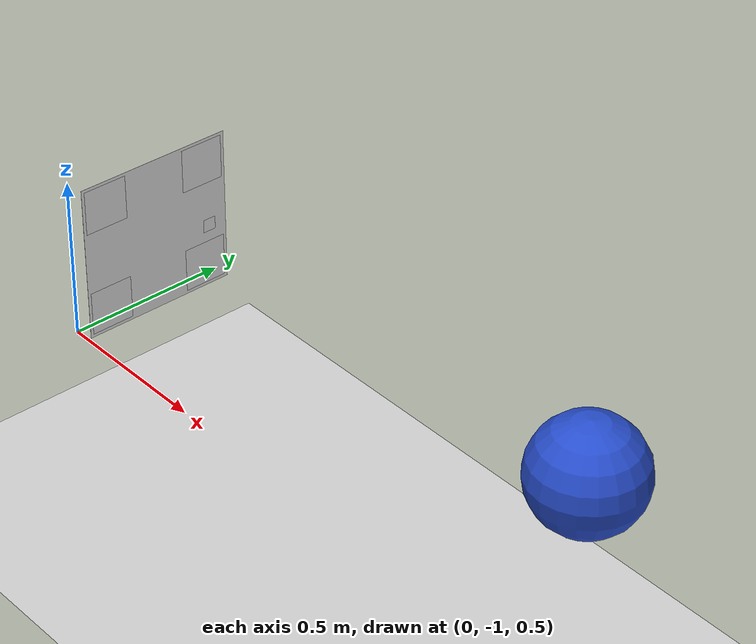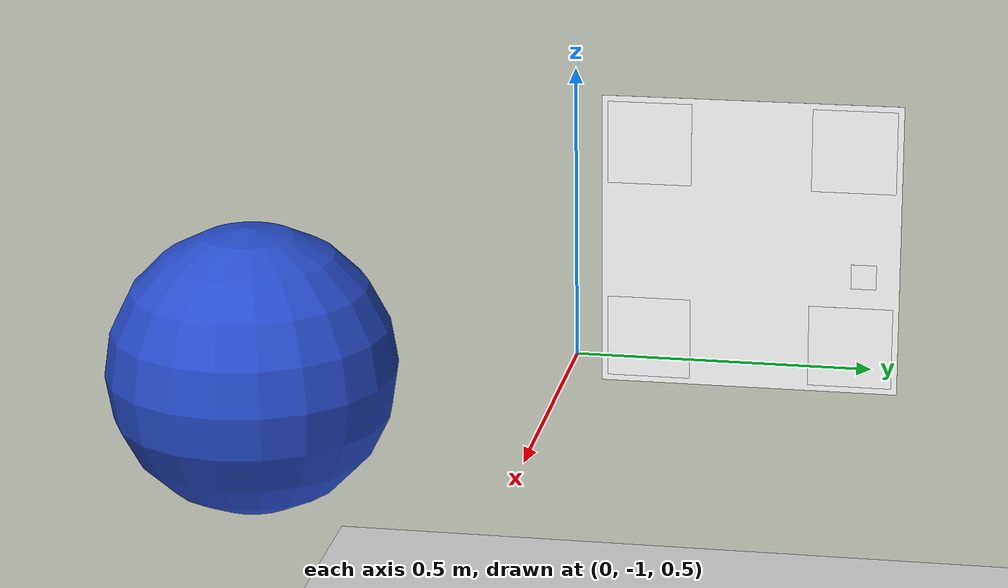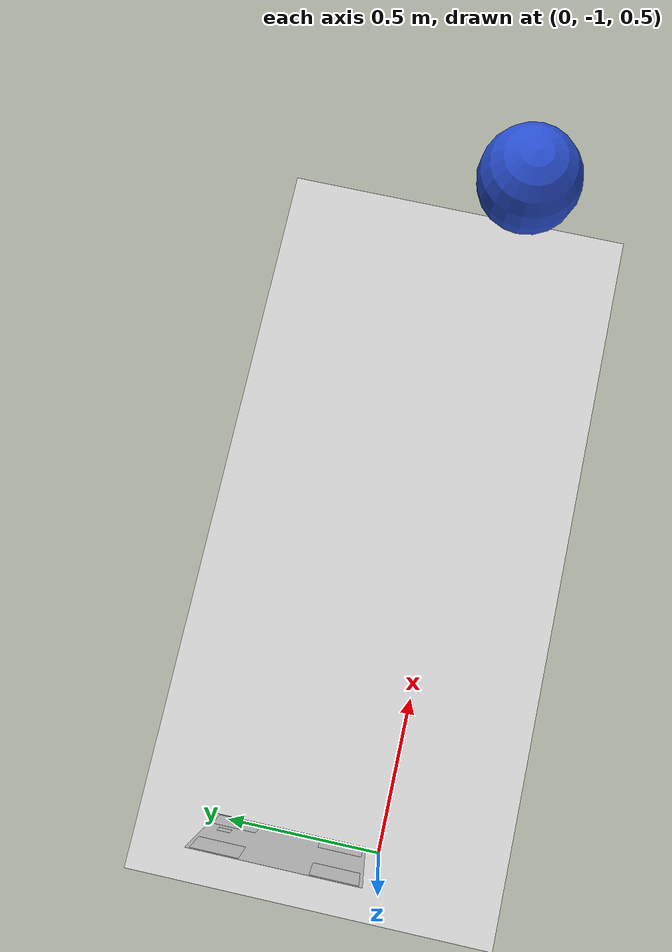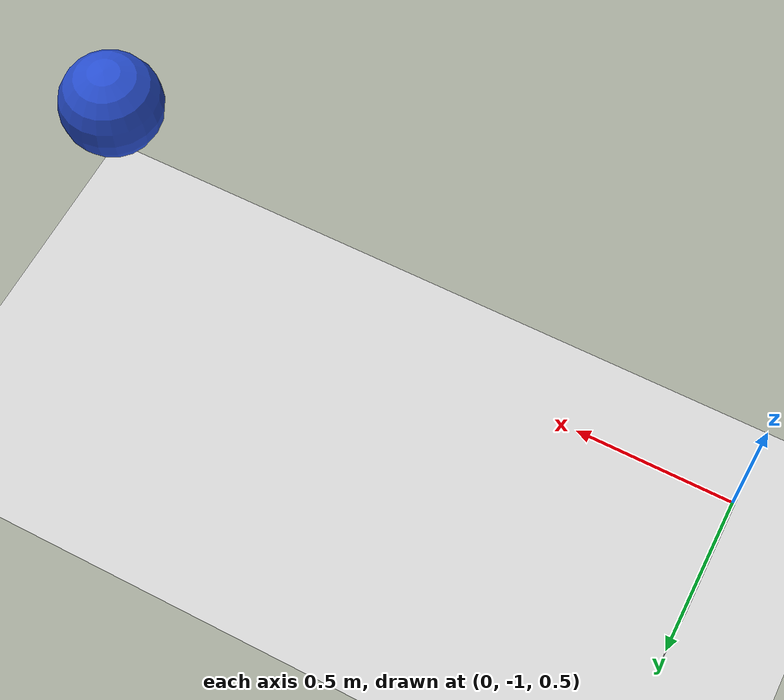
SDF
<?xml version="1.0" ?>
<sdf version="1.4">
  <!-- We use a custom world for the rrbot so that the camera angle is launched correctly -->

  <world name="default">
    <!-- Included light -->
    <include>
      <uri>https://fuel.gazebosim.org/1.0/OpenRobotics/models/Sun</uri>
    </include>

    <!-- Included model -->
    <include>
      <uri>https://fuel.gazebosim.org/1.0/OpenRobotics/models/Ground Plane</uri>
    </include>

    <include>
      <uri>
        model://arucotag
      </uri>
      <name>arucotag</name>
      <pose>0 -0.707 0.707 0 1.57 0</pose>
    </include>

    <include>
      <uri>
        model://spherical_object
      </uri>
      <name>spherical_object</name>
      <pose>1 -0.5 0.6 0 0 0</pose>
    </include>

    <gravity>0 0 0</gravity>

    <!-- Focus camera on tall pendulum -->
    <gui fullscreen='0'>
      <camera name='user_camera'>
        <pose>4.927360 -4.376610 3.740080 0.000000 0.275643 2.356190</pose>
        <view_controller>orbit</view_controller>
      </camera>
    </gui>

    <!-- World control -->

  </world>
</sdf>

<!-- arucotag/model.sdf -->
<sdf version='1.9'>
  <model name='arucotag'>
    <static>true</static>
    <pose>0 0 0.001 0 0 0</pose>
    <link name='base'>
      <visual name='background_visual'>
        <geometry>
          <plane>
            <normal>0 0 1</normal>
            <size>0.5 0.5</size>
          </plane>
        </geometry>
        <material>
          <diffuse>1 1 1 1</diffuse>
          <specular>0.2 0.2 0.2 1</specular>
        </material>
      </visual>
      <visual name='tag_0_visual'>
        <pose>0.17 0.17 0.0002 0 0 0</pose>
        <geometry>
          <plane>
            <normal>0 0 1</normal>
            <size>0.14 0.14</size>
          </plane>
        </geometry>
        <material>
          <diffuse>1 1 1 1</diffuse>
          <specular>0.4 0.4 0.4 1</specular>
          <pbr>
            <metal>
              <albedo_map>model://arucotag/aruco_0.png</albedo_map>
            </metal>
          </pbr>
        </material>
      </visual>
      <visual name='tag_1_visual'>
        <pose>-0.17 0.17 0.0002 0 0 0</pose>
        <geometry>
          <plane>
            <normal>0 0 1</normal>
            <size>0.14 0.14</size>
          </plane>
        </geometry>
        <material>
          <diffuse>1 1 1 1</diffuse>
          <specular>0.4 0.4 0.4 1</specular>
          <pbr>
            <metal>
              <albedo_map>model://arucotag/aruco_1.png</albedo_map>
            </metal>
          </pbr>
        </material>
      </visual>
      <visual name='tag_2_visual'>
        <pose>-0.17 -0.17 0.0002 0 0 0</pose>
        <geometry>
          <plane>
            <normal>0 0 1</normal>
            <size>0.14 0.14</size>
          </plane>
        </geometry>
        <material>
          <diffuse>1 1 1 1</diffuse>
          <specular>0.4 0.4 0.4 1</specular>
          <pbr>
            <metal>
              <albedo_map>model://arucotag/aruco_2.png</albedo_map>
            </metal>
          </pbr>
        </material>
      </visual>
      <visual name='tag_3_visual'>
        <pose>0.17 -0.17 0.0002 0 0 0</pose>
        <geometry>
          <plane>
            <normal>0 0 1</normal>
            <size>0.14 0.14</size>
          </plane>
        </geometry>
        <material>
          <diffuse>1 1 1 1</diffuse>
          <specular>0.4 0.4 0.4 1</specular>
          <pbr>
            <metal>
              <albedo_map>model://arucotag/aruco_3.png</albedo_map>
            </metal>
          </pbr>
        </material>
      </visual>
      <visual name='tag_4_visual'>
        <pose>0.0 0.11 0.0002 0 0 0</pose>
        <geometry>
          <plane>
            <normal>0 0 1</normal>
            <size>0.07 0.07</size>
          </plane>
        </geometry>
        <material>
          <diffuse>1 1 1 1</diffuse>
          <specular>0.4 0.4 0.4 1</specular>
          <pbr>
            <metal>
              <albedo_map>model://arucotag/aruco_4.png</albedo_map>
            </metal>
          </pbr>
        </material>
      </visual>
      <visual name='tag_5_visual'>
        <pose>-0.11 0.0 0.0002 0 0 0</pose>
        <geometry>
          <plane>
            <normal>0 0 1</normal>
            <size>0.07 0.07</size>
          </plane>
        </geometry>
        <material>
          <diffuse>1 1 1 1</diffuse>
          <specular>0.4 0.4 0.4 1</specular>
          <pbr>
            <metal>
              <albedo_map>model://arucotag/aruco_5.png</albedo_map>
            </metal>
          </pbr>
        </material>
      </visual>
      <visual name='tag_6_visual'>
        <pose>0.0 -0.11 0.0002 0 0 0</pose>
        <geometry>
          <plane>
            <normal>0 0 1</normal>
            <size>0.07 0.07</size>
          </plane>
        </geometry>
        <material>
          <diffuse>1 1 1 1</diffuse>
          <specular>0.4 0.4 0.4 1</specular>
          <pbr>
            <metal>
              <albedo_map>model://arucotag/aruco_6.png</albedo_map>
            </metal>
          </pbr>
        </material>
      </visual>
      <visual name='tag_7_visual'>
        <pose>0.11 0.0 0.0002 0 0 0</pose>
        <geometry>
          <plane>
            <normal>0 0 1</normal>
            <size>0.07 0.07</size>
          </plane>
        </geometry>
        <material>
          <diffuse>1 1 1 1</diffuse>
          <specular>0.4 0.4 0.4 1</specular>
          <pbr>
            <metal>
              <albedo_map>model://arucotag/aruco_7.png</albedo_map>
            </metal>
          </pbr>
        </material>
      </visual>
      <visual name='tag_8_visual'>
        <pose>0.0 0.045 0.0002 0 0 0</pose>
        <geometry>
          <plane>
            <normal>0 0 1</normal>
            <size>0.025 0.025</size>
          </plane>
        </geometry>
        <material>
          <diffuse>1 1 1 1</diffuse>
          <specular>0.4 0.4 0.4 1</specular>
          <pbr>
            <metal>
              <albedo_map>model://arucotag/aruco_8.png</albedo_map>
            </metal>
          </pbr>
        </material>
      </visual>
      <visual name='tag_9_visual'>
        <pose>-0.045 0.0 0.0002 0 0 0</pose>
        <geometry>
          <plane>
            <normal>0 0 1</normal>
            <size>0.025 0.025</size>
          </plane>
        </geometry>
        <material>
          <diffuse>1 1 1 1</diffuse>
          <specular>0.4 0.4 0.4 1</specular>
          <pbr>
            <metal>
              <albedo_map>model://arucotag/aruco_9.png</albedo_map>
            </metal>
          </pbr>
        </material>
      </visual>
      <visual name='tag_10_visual'>
        <pose>0.0 -0.045 0.0002 0 0 0</pose>
        <geometry>
          <plane>
            <normal>0 0 1</normal>
            <size>0.025 0.025</size>
          </plane>
        </geometry>
        <material>
          <diffuse>1 1 1 1</diffuse>
          <specular>0.4 0.4 0.4 1</specular>
          <pbr>
            <metal>
              <albedo_map>model://arucotag/aruco_10.png</albedo_map>
            </metal>
          </pbr>
        </material>
      </visual>
      <visual name='tag_11_visual'>
        <pose>0.045 0.0 0.0002 0 0 0</pose>
        <geometry>
          <plane>
            <normal>0 0 1</normal>
            <size>0.025 0.025</size>
          </plane>
        </geometry>
        <material>
          <diffuse>1 1 1 1</diffuse>
          <specular>0.4 0.4 0.4 1</specular>
          <pbr>
            <metal>
              <albedo_map>model://arucotag/aruco_11.png</albedo_map>
            </metal>
          </pbr>
        </material>
      </visual>
      <visual name='tag_12_visual'>
        <pose>0.0 0.0 0.0002 0 0 0</pose>
        <geometry>
          <plane>
            <normal>0 0 1</normal>
            <size>0.018 0.018</size>
          </plane>
        </geometry>
        <material>
          <diffuse>1 1 1 1</diffuse>
          <specular>0.4 0.4 0.4 1</specular>
          <pbr>
            <metal>
              <albedo_map>model://arucotag/aruco_12.png</albedo_map>
            </metal>
          </pbr>
        </material>
      </visual>
      <!-- Small, flat drawing of the positive board axes.  It sits in the
           marker-free gap between the two large +Y-side tags. -->
      <visual name='board_positive_axes_drawing'>
        <pose>0.045 0.190 0.0005 0 0 0</pose>
        <geometry>
          <plane>
            <normal>0 0 1</normal>
            <size>0.042 0.042</size>
          </plane>
        </geometry>
        <material>
          <diffuse>1 1 1 1</diffuse>
          <specular>0 0 0 1</specular>
          <pbr>
            <metal>
              <albedo_map>model://arucotag/board_axes_xy.png</albedo_map>
            </metal>
          </pbr>
        </material>
      </visual>
    </link>
  </model>
</sdf>

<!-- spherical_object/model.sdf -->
<sdf version="1.6">
  <model name="spherical_object">
    <link name="link">
      <pose>1 -0.5 0.6 0 0 0</pose>
      <gravity>0</gravity>
      <inertial>
        <pose>0 0 0 0 0 0</pose>
        <mass>0.001</mass>
        <inertia>
          <ixx>3.7499999999999997e-06</ixx>
          <ixy>0.0</ixy>
          <ixz>0.0</ixz>
          <iyy>1.8750008333333333e-06</iyy>
          <iyz>0.0</iyz>
          <izz>1.8750008333333333e-06</izz>
        </inertia>
      </inertial>
      <visual name='visual'>
        <pose>0.00005 0 0 0 0 0</pose>
        <geometry>
          <sphere>
            <radius>0.15</radius>
          </sphere>
        </geometry>
        <material>
          <lighting>1</lighting>
          <script>
            <uri>file://media/materials/scripts/gazebo.material</uri>
            <name>Gazebo/Blue</name>
          </script>
          <shader type='pixel'>
            <normal_map>__default__</normal_map>
          </shader>
        </material>
        <transparency>0</transparency>
        <cast_shadows>1</cast_shadows>
      </visual>
      <collision name="collision">
        <pose>0 0 0 0 0 0</pose>
        <geometry>
            <sphere>
                <radius>0.15</radius>
            </sphere>
        </geometry>
      </collision>
    </link>
    <static>1</static>
  </model>
</sdf>
